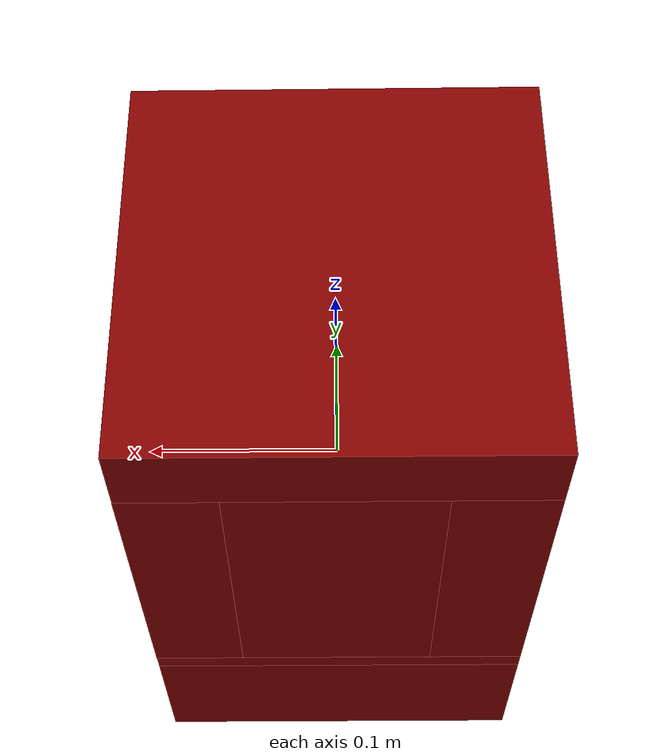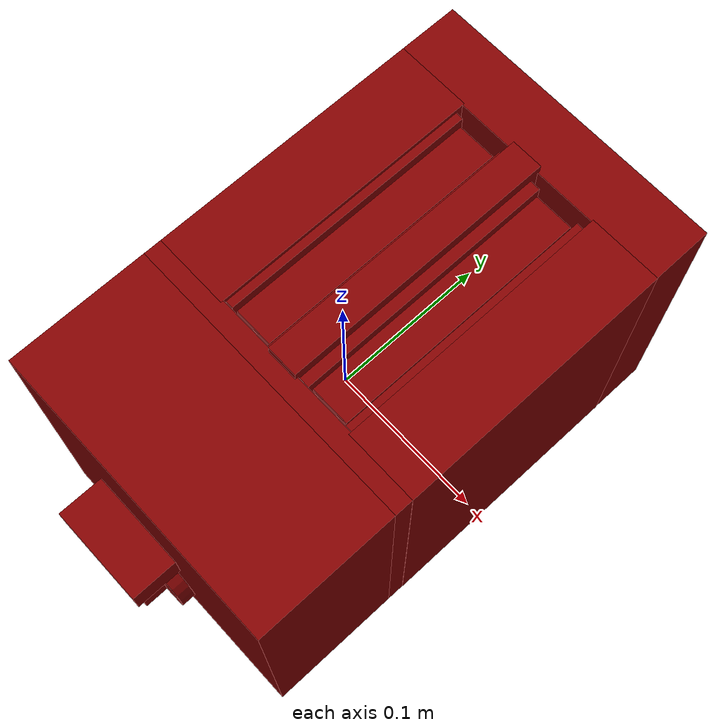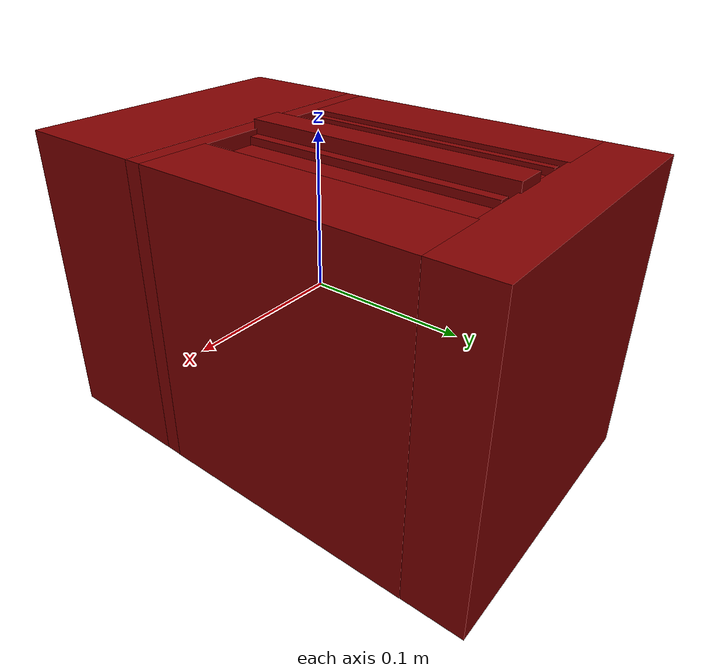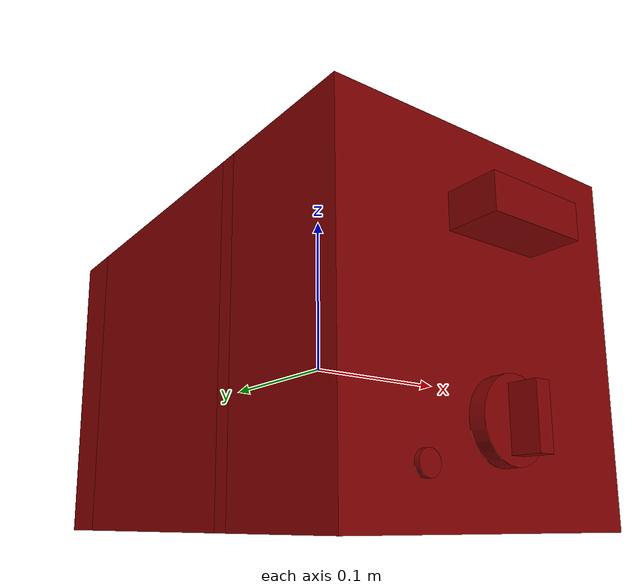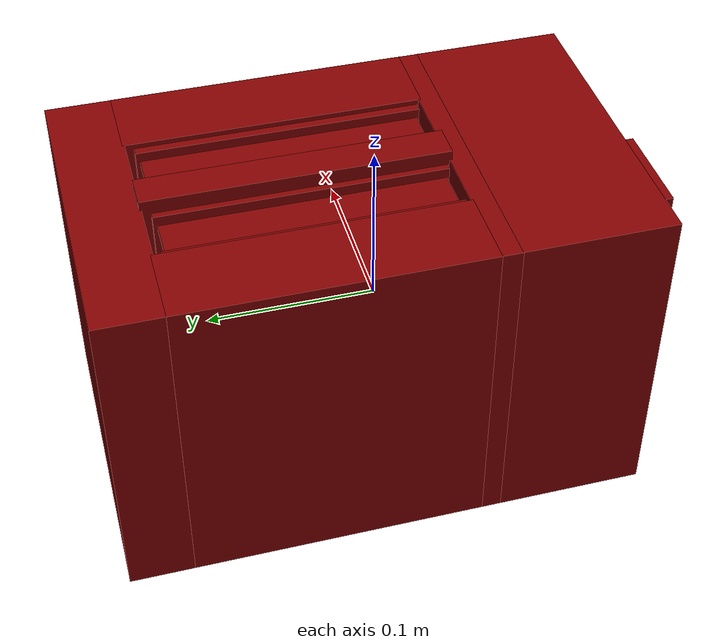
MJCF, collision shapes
<?xml version='1.0' encoding='UTF-8'?>
<mujoco model="model">
  <compiler angle="radian"/>
  <asset>
    <mesh file="visuals/Body001.obj" name="Body001_vis"/>
    <mesh file="visuals/Body002.obj" name="Body002_vis"/>
    <mesh file="visuals/Button001.obj" name="Button001_vis"/>
    <mesh file="visuals/Knob001.obj" name="Knob001_vis"/>
    <mesh file="visuals/Lever001.obj" name="Lever001_vis"/>
    <texture file="visuals/T_BC001.png" name="Body001_material" type="2d"/>
    <material name="Body001_material" rgba="1 1 1 1.0" texture="Body001_material" shininess="0.1" specular="3"/>
    <texture file="visuals/T_BC001.png" name="Body002_material" type="2d"/>
    <material name="Body002_material" rgba="1 1 1 1.0" texture="Body002_material" shininess="0.1" specular="4"/>
    <texture file="visuals/T_BC001.png" name="Button001_material" type="2d"/>
    <material name="Button001_material" rgba="1 1 1 1.0" texture="Button001_material" shininess="0.141421377658844" specular="0.3103448502657381"/>
    <texture file="visuals/T_BC001.png" name="Knob001_material" type="2d"/>
    <material name="Knob001_material" rgba="1 1 1 1.0" texture="Knob001_material" shininess="0.141421377658844" specular="0.3103448502657381"/>
    <texture file="visuals/T_BC001.png" name="Lever001_material" type="2d"/>
    <material name="Lever001_material" rgba="1 1 1 1.0" texture="Lever001_material" shininess="0.141421377658844" specular="0.3103448502657381"/>
  </asset>
  <default>
    <default class="visual">
      <geom conaffinity="0" contype="0" group="1" type="mesh"/>
    </default>
    <default class="collision">
      <geom group="0" rgba="0.5 0 0 0.5"/>
    </default>
    <default class="spawn">
      <geom group="0" rgba="1 1 1 0.5" contype="0" conaffinity="0"/>
      <site group="0" rgba="1 1 1 0.5"/>
    </default>
    <default class="region">
      <geom group="1" conaffinity="0" contype="0" rgba="0 1 0 0"/>
    </default>
  </default>
  <worldbody>
    <body>
      <body name="object">
        <geom mesh="Body001_vis" type="mesh" solimp="0.998 0.998 0.001" solref="0.001 1" density="100" friction="0.95 0.3 0.1" class="visual" material="Body001_material"/>
        <geom class="collision" type="box" pos="0.000153 -0.096875 -0.002182" size="0.09533999860286713 0.043956633657217026 0.0989496186375618" quat="1.0 0.0 0.0 0.0"/>
        <geom class="collision" type="box" pos="0.000153 0.150702 -0.002212" size="0.0953412875533104 0.01970463991165161 0.0989050567150116" quat="1.0 0.0 0.0 0.0"/>
        <geom class="collision" type="box" pos="0.000153 -0.046648 -0.002212" size="0.09534136950969696 0.006565403658896685 0.09890513122081757" quat="1.0 0.0 0.0 0.0"/>
        <geom class="collision" type="box" pos="-0.071041 0.045351 -0.002212" size="0.024147573858499527 0.0870424136519432 0.09890521317720413" quat="1.0 0.0 0.0 0.0"/>
        <geom class="collision" type="box" pos="0.072673 0.045351 -0.002212" size="0.02298980951309204 0.08704249560832977 0.0989052876830101" quat="1.0 0.0 0.0 0.0"/>
        <geom class="collision" type="box" pos="0.000201 0.045351 0.000613" size="0.010102552361786366 0.08704257011413574 0.10173065960407257" quat="1.0 0.0 0.0 0.0"/>
        <geom class="collision" type="box" pos="0.001288 0.045351 -0.084734" size="0.0489593967795372 0.08704272657632828 0.016384312883019447" quat="1.0 0.0 0.0 0.0"/>
        <body name="Body002">
          <geom mesh="Body002_vis" type="mesh" solimp="0.998 0.998 0.001" solref="0.001 1" density="100" friction="0.95 0.3 0.1" class="visual" material="Body002_material"/>
          <geom class="collision" type="box" pos="0.048564 0.043506 -0.002429" size="0.003973816055804491 0.0826309472322464 0.09608542174100876" quat="1.0 0.0 0.0 0.0"/>
          <geom class="collision" type="box" pos="0.012973 0.043506 -0.002429" size="0.003973816055804491 0.0826309472322464 0.09608542174100876" quat="1.0 0.0 0.0 0.0"/>
          <geom class="collision" type="box" pos="-0.009720 0.043506 -0.002429" size="0.003973816055804491 0.0826309472322464 0.09608542174100876" quat="1.0 0.0 0.0 0.0"/>
          <geom class="collision" type="box" pos="-0.045910 0.043881 -0.002429" size="0.003973816055804491 0.0826309472322464 0.09608542174100876" quat="1.0 0.0 0.0 0.0"/>
        </body>
        <body name="Button001">
          <joint axis="0.0 1.0 0.0" pos="-0.047978 -0.141622 -0.071147" limited="true" name="Button001_joint" range="0.0 0.002" type="slide" damping="1" frictionloss="1" armature=".01" stiffness="0.05"/>
          <geom mesh="Button001_vis" type="mesh" solimp="0.998 0.998 0.001" solref="0.001 1" density="100" friction="0.95 0.3 0.1" class="visual" material="Button001_material"/>
          <geom class="collision" type="cylinder" pos="-0.048079 -0.142623 -0.071168" size="0.006570723839104176 0.0016052406281232834" quat="0.7071068286895752 0.7071067690849304 0.0 0.0"/>
        </body>
        <body name="Knob001">
          <joint axis="0.0 1.0 0.0" pos="0.001875 -0.146374 -0.049709" limited="true" name="Knob001_joint" range="0.0 5.148721293383272" type="hinge" damping="0.05" armature="0.001" springref="-0.1"/>
          <geom mesh="Knob001_vis" type="mesh" solimp="0.998 0.998 0.001" solref="0.001 1" density="100" friction="0.95 0.3 0.1" class="visual" material="Knob001_material"/>
          <geom class="collision" type="cylinder" pos="0.001944 -0.146118 -0.049604" size="0.02197224088013172 0.0045138937421143055" quat="0.7071068286895752 0.7071067690849304 0.0 0.0"/>
          <geom class="collision" type="box" pos="0.001748 -0.158471 -0.049601" size="0.004662684630602598 0.007759850937873125 0.01671404391527176" quat="1.0 0.0 0.0 0.0"/>
        </body>
        <body name="Lever001">
          <joint axis="0.0 0.0 -1.0" pos="0.000031 -0.121641 0.047576" limited="true" name="Lever001_joint" range="0.0 0.05" type="slide" damping="1" frictionloss="-0.1" armature=".01" stiffness="1" springref="-0.8"/>
          <geom mesh="Lever001_vis" type="mesh" solimp="0.998 0.998 0.001" solref="0.001 1" density="100" friction="0.95 0.3 0.1" class="visual" material="Lever001_material"/>
          <geom class="collision" type="box" pos="0.000564 -0.157148 0.047700" size="0.029947616159915924 0.013871277682483196 0.00972815416753292" quat="1.0 0.0 0.0 0.0" name="lever_knob"/>
          <geom class="collision" type="box" pos="0.030355 0.043506 0.087540" size="0.01249999925494194 0.08058834820985794 0.001658800640143454" quat="1.0 0.0 0.0 0.0" name="slotL_floor"/>
          <geom class="collision" type="box" pos="-0.028117 0.043506 0.087540" size="0.01249999925494194 0.0805879756808281 0.0016587929567322135" quat="1.0 0.0 0.0 0.0" name="slotR_floor"/>
        </body>
        <geom class="region" name="reg_main" type="box" pos="0.0 0.014709 0.0" size="0.09515 0.155758 0.1006"/>
      </body>
    </body>
  </worldbody>
  <actuator>
    <motor name="Button001_joint_actuator" joint="Button001_joint" gear="0.5"/>
    <motor name="Knob001_joint_actuator" joint="Knob001_joint" gear="5"/>
    <motor name="Lever001_joint_actuator" joint="Lever001_joint" gear="2"/>
  </actuator>
</mujoco>
